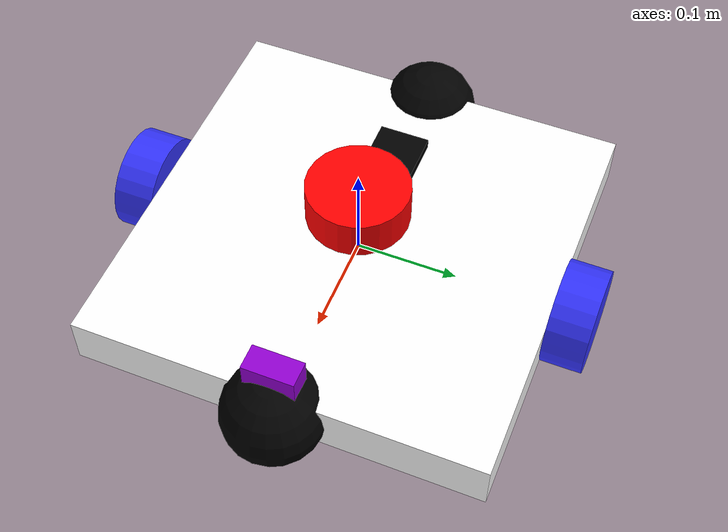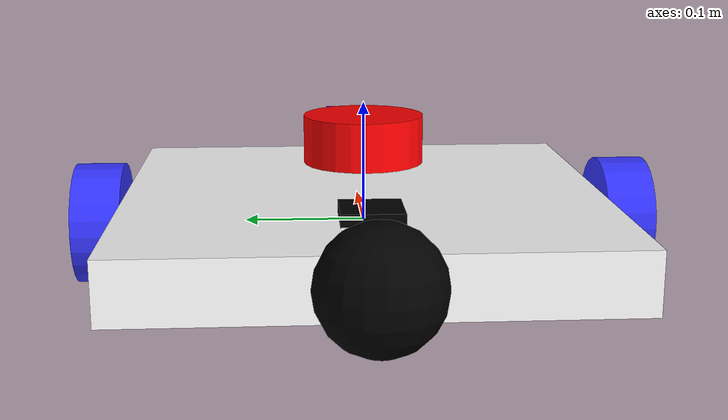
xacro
<?xml version="1.0"?>
<robot xmlns:xacro="http://www.ros.org/wiki/xacro" name="zulu_robot">

    <!-- Example link -->
    <xacro:include filename="$(find charlie_description)/macros/properties.xacro"/>
    <xacro:include filename="robot_core.xacro"/>

    <!-- Sensors -->
    <xacro:include filename="$(find charlie_description)/sensors/lidar.xacro"/> <!-- Lidar sensor -->

    <xacro:include filename="$(find charlie_description)/sensors/depth_camera.xacro"/> <!-- Camera sensor -->

    <xacro:include filename="$(find charlie_description)/sensors/imu.xacro"/> <!-- IMU sensor -->

    <!-- ros2_control -->
    <xacro:include filename="ros2_control.xacro"/>

</robot>

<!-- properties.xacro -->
<robot xmlns:xacro="http://www.ros.org/wiki/xacro">
    <!-- Color Definitions -->
    <material name="white">
        <color rgba= "1 1 1 1"/>
    </material>

    <material name="orange">
        <color rgba= "1 0.3 0.1 1"/>
    </material>

    <material name="blue">
        <color rgba= "0.2 0.2 1 1"/>
    </material>

    <material name="black">
        <color rgba= "0 0 0 1"/>
    </material>

    <material name="red">
        <color rgba= "1 0 0 1"/>
    </material>

    <material name="purple">
        <color rgba= "0.58 0.0 0.827 1"/>
    </material>

    <material name="gray">
        <color rgba= "0.5 0.5 0.5 1"/>
    </material>

</robot>

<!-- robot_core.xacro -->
<robot xmlns:xacro="http://www.ros.org/wiki/xacro">

    <!-- Example link -->
    <xacro:include filename="$(find charlie_description)/macros/inertial_macros.xacro"/>

    <xacro:property name="rad_w" value="0.05"/>
    <xacro:property name="le_w" value="0.04"/>
    <xacro:property name="ly" value="0.4"/>
    <xacro:property name="lx" value="0.4"/>
    <xacro:property name="lz" value="0.05"/>

    <!-- Camera dimensions -->
    <xacro:property name="cam_base_x" value="${0.015}"/>
    <xacro:property name="cam_base_y" value="${0.015}"/>
    <xacro:property name="cam_base_z" value="${0.015}"/>

    <xacro:property name="cam_x" value="${0.025}"/>
    <xacro:property name="cam_y" value="${0.05}"/>
    <xacro:property name="cam_z" value="${0.025}"/>

    <!-- IMU dimensions -->
    <xacro:property name="imu_lx" value="0.05"/>
    <xacro:property name="imu_ly" value="0.05"/>
    <xacro:property name="imu_lz" value="0.01"/>

    <!-- Example link -->
    <link name="base_link">
    </link>

    <joint name="base_link_joint" type="fixed">
        <parent link="base_link"/>
        <child link="chassis"/>
        <origin xyz="0 0 0"/>
    </joint>

    <!-- chassis link -->
    <link name="chassis">
        <visual>
            <origin xyz="0 0 0"/>
            <geometry>
                <box size="${lx} ${ly} ${lz}"/>
            </geometry>
            <material name="white"/>
        </visual>
        <collision>
            <origin xyz="0 0 0"/>
            <geometry>
               <box size="${lx} ${ly} ${lz}"/>
            </geometry>
        </collision>
        <xacro:inertial_box mass="5.0" x="${lx}" y="${ly}" z="${lz}">
            <origin xyz="0 0 0" rpy="0 0 0"/>
        </xacro:inertial_box>
    </link>

    <!-- left wheel joint -->
    <joint name="left_wheel_joint" type="continuous">
        <parent link="chassis"/>
        <child link="left_wheel"/>
        <origin xyz="0 ${ly/2+le_w/2} 0.0" rpy="-${pi/2} 0 0"/>
        <axis xyz="0 0 1"/>
        <dynamics damping="0.2" friction="0.0"/>
    </joint>

    <!-- left wheel link -->
    <link name="left_wheel">
        <visual>
            <geometry>
                <cylinder radius="${rad_w}" length="${le_w}"/>
            </geometry>
            <material name="blue"/>
        </visual>
        <collision>
            <geometry>
                  <sphere radius="${rad_w}" />
            </geometry>

        </collision>
        <xacro:inertial_cylinder mass="0.1" length="${le_w}" radius="${rad_w}">
            <origin xyz="0 0 0" rpy="0 0 0"/>
        </xacro:inertial_cylinder>
    </link>

    <gazebo reference="left_wheel">
        <mu1 value="2.0"/>
        <mu2 value="2.0"/>
        <kp value="10000000.0" />
        <kd value="1.0" />
    </gazebo>

    <!-- right wheel joint -->
    <joint name="right_wheel_joint" type="continuous">
        <parent link="chassis"/>
        <child link="right_wheel"/>
        <origin xyz="0 -${ly/2+le_w/2} 0.0" rpy="${pi/2} 0 0"/>
        <axis xyz="0 0 -1"/>
        <dynamics damping="0.2" friction="0.0"/>
    </joint>

    <!-- right wheel link -->
    <link name="right_wheel">
        <visual>
            <geometry>
                <cylinder radius="${rad_w}" length="${le_w}"/>
            </geometry>
            <material name="blue"/>
        </visual>
        <collision>
            <geometry>
                  <sphere radius="${rad_w}" />
            </geometry>

        </collision>
        <xacro:inertial_cylinder mass="0.1" length="${le_w}" radius="${rad_w}">
            <origin xyz="0 0 0" rpy="0 0 0"/>
        </xacro:inertial_cylinder>
    </link>

    <gazebo reference="right_wheel">
        <mu1 value="2.0"/>
        <mu2 value="2.0"/>
        <kp value="10000000.0" />
        <kd value="1.0" />
    </gazebo>

    <!-- caster wheel joint -->
    <joint name="caster_front_wheel_joint" type="fixed">
        <parent link="chassis"/>
        <child link="caster_front_wheel"/>
        <origin xyz="${lx/2} 0 0.0"/>
    </joint>

    <!-- left wheel link -->
    <link name="caster_front_wheel">
        <visual>
            <geometry>
                <sphere radius="0.049"/>
            </geometry>
            <material name="black"/>
        </visual>
        <collision>
            <geometry>
                <sphere radius="0.049"/>
            </geometry>
            <surface>
                <friction>
                <ode>
                    <mu>0.01</mu>
                    <mu2>0.01</mu2>
                </ode>
                </friction>
            </surface>
        </collision>
        <xacro:inertial_sphere mass="0.1" radius="0.049">
            <origin xyz="0 0 0" rpy="0 0 0"/>
        </xacro:inertial_sphere>
    </link>

     <!-- caster wheel joint -->
    <joint name="caster_rear_wheel_joint" type="fixed">
        <parent link="chassis"/>
        <child link="caster_rear_wheel"/>
        <origin xyz="${-lx/2} 0 0.0"/>
    </joint>

    <!-- left wheel link -->
    <link name="caster_rear_wheel">
        <visual>
            <geometry>
                <sphere radius="0.049"/>
            </geometry>
            <material name="black"/>
        </visual>
        <collision>
            <geometry>
                <sphere radius="0.049"/>
            </geometry>
            <surface>
                <friction>
                <ode>
                    <mu>0.01</mu>
                    <mu2>0.01</mu2>
                </ode>
                </friction>
            </surface>
        </collision>
        <xacro:inertial_sphere mass="0.1" radius="0.049">
            <origin xyz="0 0 0" rpy="0 0 0"/>
        </xacro:inertial_sphere>
    </link>

</robot>

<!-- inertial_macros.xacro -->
<robot xmlns:xacro="http://www.ros.org/wiki/xacro" >

    <!-- Specify some standard inertial calculations https://en.wikipedia.org/wiki/List_of_moments_of_inertia -->
    <!-- These make use of xacro's mathematical functionality -->

    <xacro:macro name="inertial_sphere" params="mass radius *origin">
        <inertial>
            <xacro:insert_block name="origin"/>
            <mass value="${mass}" />
            <inertia ixx="${(2/5) * mass * (radius*radius)}" ixy="0.0" ixz="0.0"
                    iyy="${(2/5) * mass * (radius*radius)}" iyz="0.0"
                    izz="${(2/5) * mass * (radius*radius)}" />
        </inertial>
    </xacro:macro>

    <xacro:macro name="inertial_box" params="mass x y z *origin">
        <inertial>
            <xacro:insert_block name="origin"/>
            <mass value="${mass}" />
            <inertia ixx="${(1/12) * mass * (y*y+z*z)}" ixy="0.0" ixz="0.0"
                    iyy="${(1/12) * mass * (x*x+z*z)}" iyz="0.0"
                    izz="${(1/12) * mass * (x*x+y*y)}" />
        </inertial>
    </xacro:macro>

    <xacro:macro name="inertial_cylinder" params="mass length radius *origin">
        <inertial>
            <xacro:insert_block name="origin"/>
            <mass value="${mass}" />
            <inertia ixx="${(1/12) * mass * (3*radius*radius + length*length)}" ixy="0.0" ixz="0.0"
                    iyy="${(1/12) * mass * (3*radius*radius + length*length)}" iyz="0.0"
                    izz="${(1/2) * mass * (radius*radius)}" />
        </inertial>
    </xacro:macro>
</robot>

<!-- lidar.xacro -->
<robot xmlns:xacro="http://www.ros.org/wiki/xacro" >

    <!-- Lidar link -->
    <link name="lidar_link">
         <visual>
            <geometry>
                <cylinder radius="${rad_w}" length="${le_w}"/>
            </geometry>
            <material name="red"/>
        </visual>
        <collision>
            <geometry>
                <cylinder radius="${rad_w}" length="${le_w}"/>
            </geometry>
        </collision>
        <xacro:inertial_cylinder mass="0.1" length="${le_w}" radius="${rad_w}">
            <origin xyz="0 0 0" rpy="0 0 0"/>
        </xacro:inertial_cylinder>
    </link>

    <joint name="lidar_chassis_joint" type="fixed">
        <parent link="chassis"/>
        <child link="lidar_link"/>
        <origin xyz="0 0 ${lz+le_w/2}" rpy="0 0 0"/>
    </joint>

    <gazebo reference="lidar_link">
    <sensor name="lidar" type="gpu_lidar">
        <always_on>true</always_on>
        <update_rate>10</update_rate>
        <visualize>true</visualize>
        <topic>scan</topic>
        <gz_frame_id>lidar_link</gz_frame_id>

        <lidar>
        <scan>
            <horizontal>
            <samples>720</samples>
            <min_angle>-3.14159</min_angle>
            <max_angle>3.14159</max_angle>
            </horizontal>
        </scan>
        <range>
            <min>0.12</min>
            <max>12.0</max>
        </range>
        </lidar>
    </sensor>
    </gazebo>

</robot>

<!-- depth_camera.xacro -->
<robot xmlns:xacro="http://www.ros.org/wiki/xacro" >

    <!-- depth_camera_base link -->
    <xacro:property name="camera_name" value="depth_camera_1"/>
    <xacro:property name="frame_name" value="depth_camera_optical_link"/>

    <link name="depth_camera_base_link">
         <visual>
            <geometry>
                <box size="${cam_base_x} ${cam_base_y} ${cam_base_z}"/>
            </geometry>
            <material name="purple"/>
        </visual>
        <collision>
            <geometry>
                <box size="${cam_base_x} ${cam_base_y} ${cam_base_z}"/>
            </geometry>
        </collision>
        <xacro:inertial_box mass="0.1" x="${cam_base_x}" y="${cam_base_y}" z="${cam_base_z}">
            <origin xyz="0 0 0" rpy="0 0 0"/>
        </xacro:inertial_box>
    </link>

   <!-- depth_camera link -->
    <link name="depth_camera_link">
         <visual>
            <geometry>
                <box size="${cam_x} ${cam_y} ${cam_z}"/>
            </geometry>
            <material name="purple"/>
        </visual>
        <collision>
            <geometry>
                <box size="${cam_x} ${cam_y} ${cam_z}"/>
            </geometry>
        </collision>
        <xacro:inertial_box mass="0.1" x="${cam_x}" y="${cam_y}" z="${cam_z}">
            <origin xyz="0 0 0" rpy="0 0 0"/>
        </xacro:inertial_box>
    </link>

    <joint name="depth_camera_depth_camera_base_joint" type="fixed">
        <parent link="depth_camera_base_link"/>
        <child link="depth_camera_link"/>
        <origin xyz="0 0 ${cam_base_z/2+cam_z/2}" rpy="0 0 0"/>
    </joint>

    <joint name="depth_camera_base_chassis_joint" type="fixed">
        <parent link="chassis"/>
        <child link="depth_camera_base_link"/>
        <origin xyz="${lx/2-cam_base_x/2} 0 ${lz/2+cam_base_z/2}" rpy="0 0 0"/>
    </joint>

    <link name="depth_camera_optical_link"/>

    <joint name="depth_camera_depth_camera_link_joint" type="fixed">
        <parent link="depth_camera_link"/>
        <child link="depth_camera_optical_link"/>
        <origin xyz="0 0 0" rpy="-${pi/2} 0 -${pi/2}"/>
    </joint>

    <!-- Gazebo Depth depth_camera Sensor -->
    <gazebo reference="depth_camera_link">
        <sensor name="depth_camera_1" type="rgbd_camera">
            <update_rate>20</update_rate>
            <topic>depth_camera_1</topic> <always_on>true</always_on>
            <visualize>true</visualize>

            <gz_frame_id>depth_camera_link</gz_frame_id>

            <camera>
                <horizontal_fov>1.047198</horizontal_fov>
                <image>
                    <width>640</width>
                    <height>480</height>
                    <format>R8G8B8</format>
                </image>
                <clip>
                    <near>0.05</near>
                    <far>8.0</far> </clip>
                <depth_camera>
                  <output>points</output> <clip>
                    <near>0.05</near>
                    <far>8.0</far>
                  </clip>
                </depth_camera>
            </camera>
        </sensor>
    </gazebo>

</robot>

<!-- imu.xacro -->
<robot xmlns:xacro="http://www.ros.org/wiki/xacro" >

    <link name="imu_link">
        <visual>
            <geometry>
                <box size="${imu_lx} ${imu_ly} ${imu_lz}"/>
            </geometry>
            <material name="orange">
                <color rgba="0 0 0 1"/>
            </material>
        </visual>
        <collision>
            <geometry>
                <box size="${imu_lx} ${imu_ly} ${imu_lz}"/>
            </geometry>
        </collision>
        <xacro:inertial_box mass="0.01" x="${imu_lx}" y="${imu_ly}" z="${imu_lz}">
            <origin xyz="0 0 0" rpy="0 0 0"/>
        </xacro:inertial_box>
    </link>

    <joint name="imu_joint" type="fixed">
        <parent link="chassis"/>
        <child link="imu_link"/>
        <origin xyz="-${lx/4 } 0 ${lz/2 + imu_lz/2}" rpy="0 0 0"/>
    </joint>

    <gazebo reference="imu_link">
        <gravity>true</gravity>
        <sensor name="imu_sensor" type="imu">
            <always_on>true</always_on>
            <update_rate>100</update_rate> <visualize>true</visualize>
            <topic>imu</topic>
            <gz_frame_id>imu_link</gz_frame_id>

            <imu>
                <angular_velocity>
                    <x>
                        <noise type="gaussian">
                            <mean>0.0</mean>
                            <stddev>2e-4</stddev>
                        </noise>
                    </x>
                    <y>
                        <noise type="gaussian">
                            <mean>0.0</mean>
                            <stddev>2e-4</stddev>
                        </noise>
                    </y>
                    <z>
                        <noise type="gaussian">
                            <mean>0.0</mean>
                            <stddev>2e-4</stddev>
                        </noise>
                    </z>
                </angular_velocity>
                <linear_acceleration>
                    <x>
                        <noise type="gaussian">
                            <mean>0.0</mean>
                            <stddev>1.7e-2</stddev>
                        </noise>
                    </x>
                    <y>
                        <noise type="gaussian">
                            <mean>0.0</mean>
                            <stddev>1.7e-2</stddev>
                        </noise>
                    </y>
                    <z>
                        <noise type="gaussian">
                            <mean>0.0</mean>
                            <stddev>1.7e-2</stddev>
                        </noise>
                    </z>
                </linear_acceleration>
            </imu>
        </sensor>
    </gazebo>

</robot>
